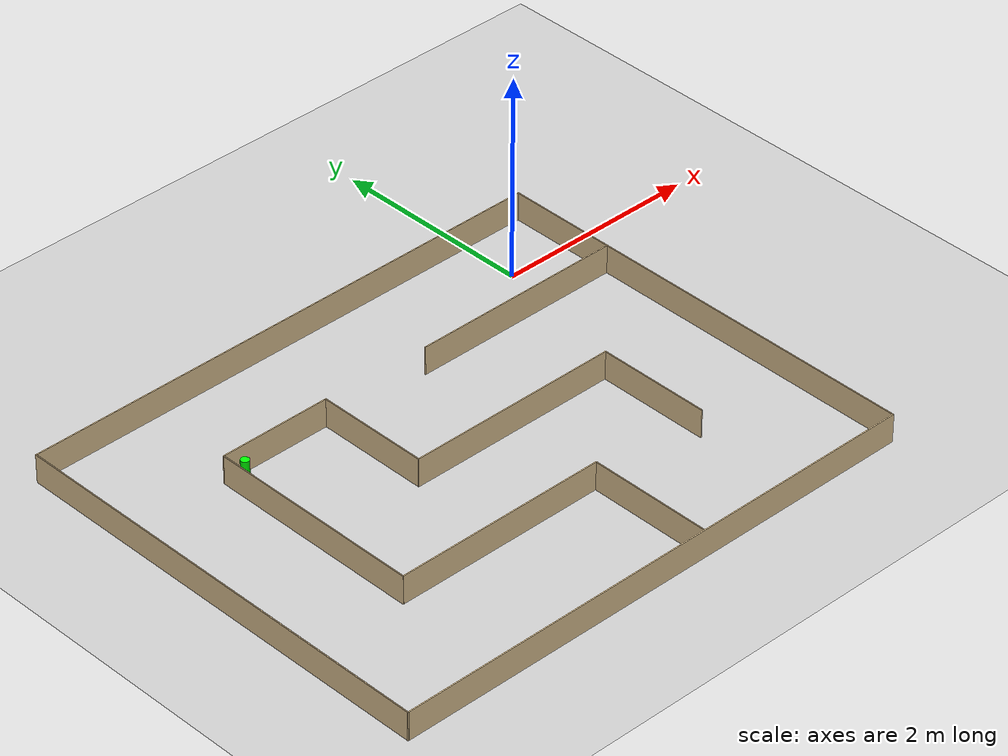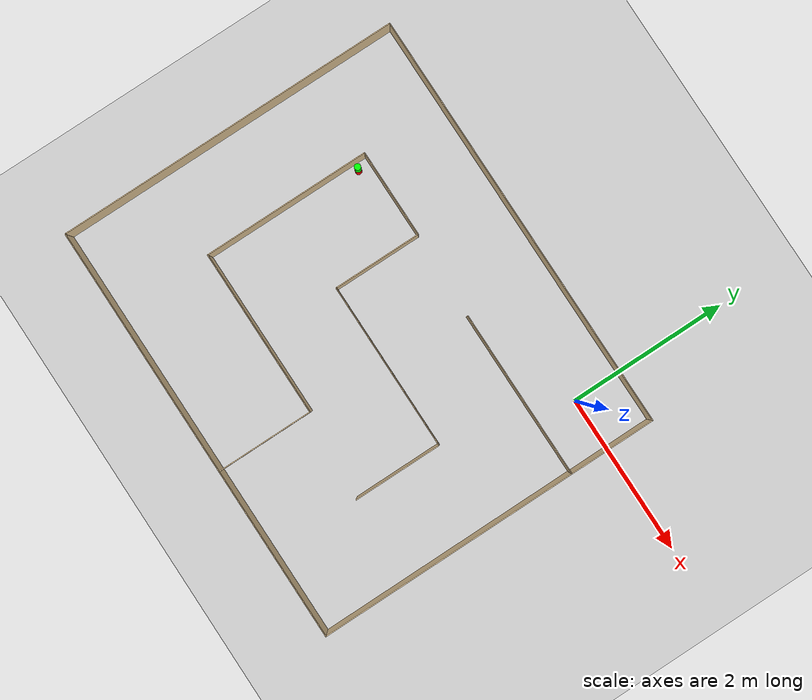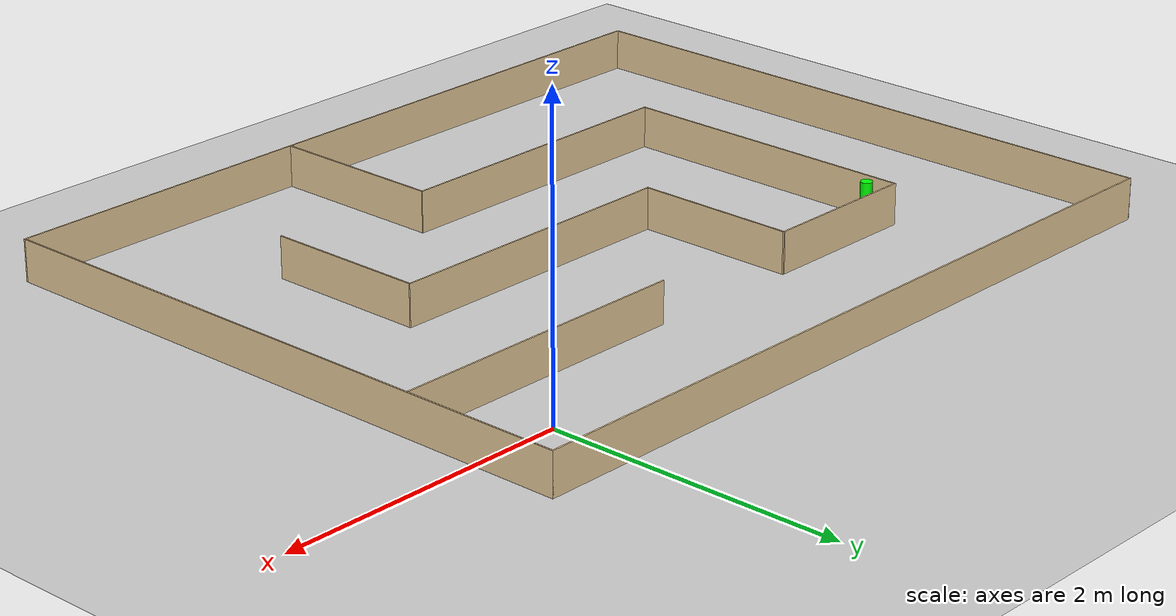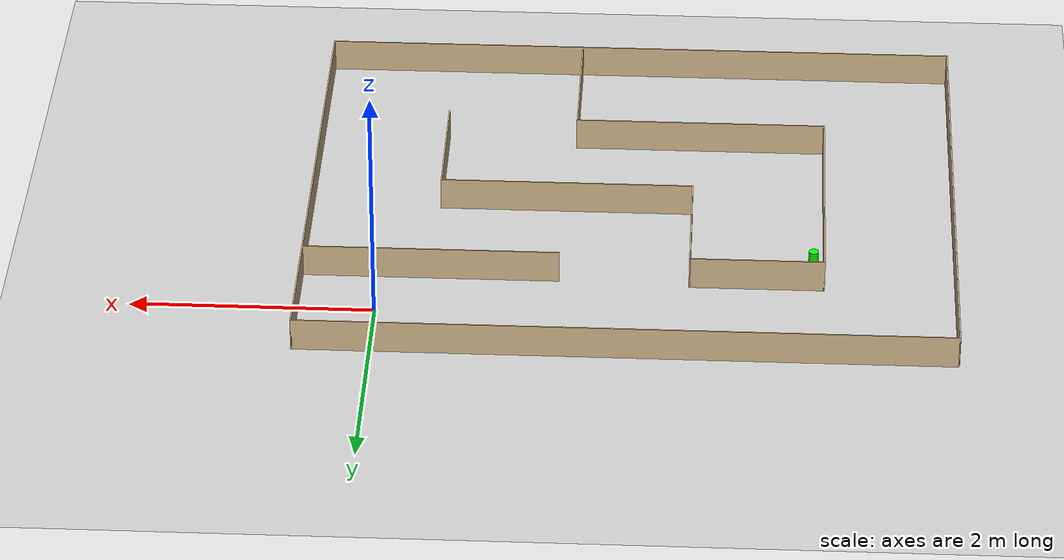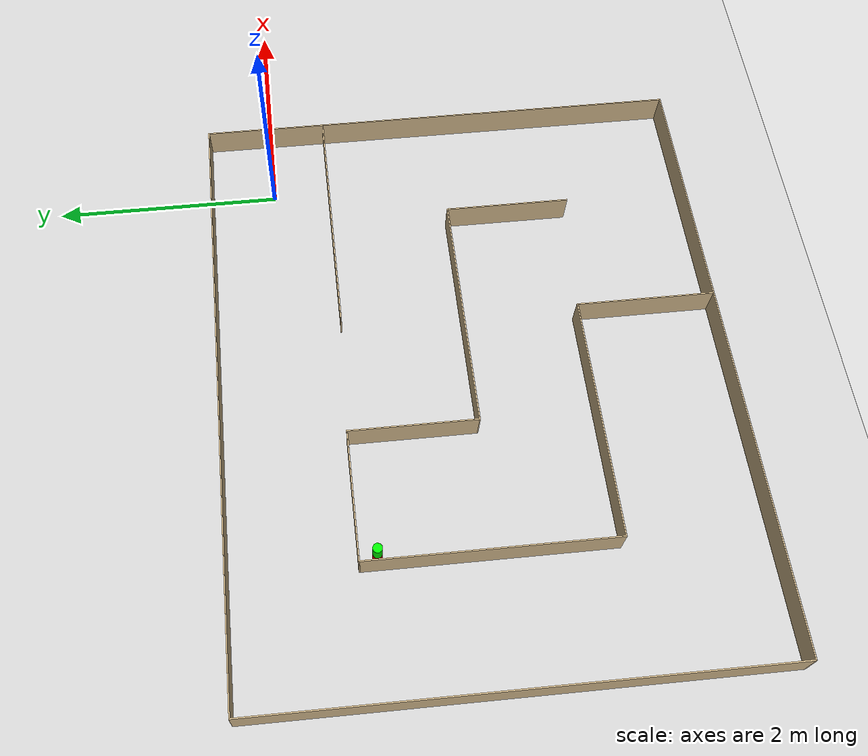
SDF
<sdf version="1.4">
  <world name="default">

    <scene>
      <ambient>0.4 0.4 0.4 1</ambient>
      <background>0.7 0.7 0.7 1</background>
      <shadows>true</shadows>
    </scene>

    <!-- A global light source -->
    <include>
      <uri>model://sun</uri>
    </include>

    <!-- A ground plane -->
    <include>
      <uri>model://ground_plane</uri>
    </include>

    <!-- My Maze -->
    <include>
      <uri>model://maze_0</uri>
	<pose>-2.05 -1.60 0 0 0 0</pose>
    </include>

    <!-- My Beacon -->
    <include>
      <uri>model://beacon_0</uri>
	<pose>-3.56 -0.62 0 0 0 0</pose>
    </include>

    <physics type="ode">
      <real_time_update_rate>1000.0</real_time_update_rate>
      <max_step_size>0.001</max_step_size>
      <real_time_factor>1</real_time_factor>
      <ode>
        <solver>
          <type>quick</type>
          <iters>150</iters>
          <precon_iters>0</precon_iters>
          <sor>1.400000</sor>
          <use_dynamic_moi_rescaling>1</use_dynamic_moi_rescaling>
        </solver>
        <constraints>
          <cfm>0.00001</cfm>
          <erp>0.2</erp>
          <contact_max_correcting_vel>2000.000000</contact_max_correcting_vel>
          <contact_surface_layer>0.01000</contact_surface_layer>
        </constraints>
      </ode>
    </physics>
  </world>

</sdf>

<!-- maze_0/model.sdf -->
<sdf version='1.6'>
  <model name='maze_0'>
    <link name='Wall_0'>
      <pose frame=''>0 2.175 0 0 -0 0</pose>
      <self_collide>0</self_collide>
      <kinematic>0</kinematic>
      <visual name='Wall_0_Visual'>
        <pose frame=''>0 0 0.14 0 -0 0</pose>
        <geometry>
          <box>
            <size>5.36 0.01 0.28</size>
          </box>
        </geometry>
        <material>
          <script>
            <uri>file://media/materials/scripts/gazebo.material</uri>
            <name>Gazebo/Grey</name>
          </script>
          <ambient>0.921569 0.807843 0.615686 1</ambient>
          <diffuse>0.7 0.7 0.7 1</diffuse>
          <specular>0.01 0.01 0.01 1</specular>
          <emissive>0 0 0 1</emissive>
        </material>
        <cast_shadows>1</cast_shadows>
        <transparency>0</transparency>
      </visual>
      <collision name='Wall_0_Collision'>
        <laser_retro>0</laser_retro>
        <max_contacts>10</max_contacts>
        <pose frame=''>0 0 0.14 0 -0 0</pose>
        <geometry>
          <box>
            <size>5.36 0.01 0.28</size>
          </box>
        </geometry>
        <surface>
          <friction>
            <ode>
              <mu>1</mu>
              <mu2>1</mu2>
              <fdir1>0 0 0</fdir1>
              <slip1>0</slip1>
              <slip2>0</slip2>
            </ode>
            <torsional>
              <coefficient>1</coefficient>
              <patch_radius>0</patch_radius>
              <surface_radius>0</surface_radius>
              <use_patch_radius>1</use_patch_radius>
              <ode>
                <slip>0</slip>
              </ode>
            </torsional>
          </friction>
          <bounce>
            <restitution_coefficient>0</restitution_coefficient>
            <threshold>1e+06</threshold>
          </bounce>
          <contact>
            <collide_without_contact>0</collide_without_contact>
            <collide_without_contact_bitmask>1</collide_without_contact_bitmask>
            <collide_bitmask>1</collide_bitmask>
            <ode>
              <soft_cfm>0</soft_cfm>
              <soft_erp>0.2</soft_erp>
              <kp>1e+13</kp>
              <kd>1</kd>
              <max_vel>0.01</max_vel>
              <min_depth>0</min_depth>
            </ode>
            <bullet>
              <split_impulse>1</split_impulse>
              <split_impulse_penetration_threshold>-0.01</split_impulse_penetration_threshold>
              <soft_cfm>0</soft_cfm>
              <soft_erp>0.2</soft_erp>
              <kp>1e+13</kp>
              <kd>1</kd>
            </bullet>
          </contact>
        </surface>
      </collision>
    </link>
    <link name='Wall_1'>
      <pose frame=''>2.675 0 0 0 0 -1.5708</pose>
      <self_collide>0</self_collide>
      <kinematic>0</kinematic>
      <visual name='Wall_1_Visual'>
        <pose frame=''>0 0 0.14 0 -0 0</pose>
        <geometry>
          <box>
            <size>4.36 0.01 0.28</size>
          </box>
        </geometry>
        <material>
          <script>
            <uri>file://media/materials/scripts/gazebo.material</uri>
            <name>Gazebo/Grey</name>
          </script>
          <ambient>0.921569 0.807843 0.615686 1</ambient>
          <diffuse>0.7 0.7 0.7 1</diffuse>
          <specular>0.01 0.01 0.01 1</specular>
          <emissive>0 0 0 1</emissive>
        </material>
        <cast_shadows>1</cast_shadows>
        <transparency>0</transparency>
      </visual>
      <collision name='Wall_1_Collision'>
        <laser_retro>0</laser_retro>
        <max_contacts>10</max_contacts>
        <pose frame=''>0 0 0.14 0 -0 0</pose>
        <geometry>
          <box>
            <size>4.36 0.01 0.28</size>
          </box>
        </geometry>
        <surface>
          <friction>
            <ode>
              <mu>1</mu>
              <mu2>1</mu2>
              <fdir1>0 0 0</fdir1>
              <slip1>0</slip1>
              <slip2>0</slip2>
            </ode>
            <torsional>
              <coefficient>1</coefficient>
              <patch_radius>0</patch_radius>
              <surface_radius>0</surface_radius>
              <use_patch_radius>1</use_patch_radius>
              <ode>
                <slip>0</slip>
              </ode>
            </torsional>
          </friction>
          <bounce>
            <restitution_coefficient>0</restitution_coefficient>
            <threshold>1e+06</threshold>
          </bounce>
          <contact>
            <collide_without_contact>0</collide_without_contact>
            <collide_without_contact_bitmask>1</collide_without_contact_bitmask>
            <collide_bitmask>1</collide_bitmask>
            <ode>
              <soft_cfm>0</soft_cfm>
              <soft_erp>0.2</soft_erp>
              <kp>1e+13</kp>
              <kd>1</kd>
              <max_vel>0.01</max_vel>
              <min_depth>0</min_depth>
            </ode>
            <bullet>
              <split_impulse>1</split_impulse>
              <split_impulse_penetration_threshold>-0.01</split_impulse_penetration_threshold>
              <soft_cfm>0</soft_cfm>
              <soft_erp>0.2</soft_erp>
              <kp>1e+13</kp>
              <kd>1</kd>
            </bullet>
          </contact>
        </surface>
      </collision>
    </link>
    <link name='Wall_10'>
      <pose frame=''>-1.051 1.133 0 0 -0 3.14159</pose>
      <self_collide>0</self_collide>
      <kinematic>0</kinematic>
      <visual name='Wall_10_Visual'>
        <pose frame=''>0 0 0.14 0 -0 0</pose>
        <geometry>
          <box>
            <size>1.11 0.01 0.28</size>
          </box>
        </geometry>
        <material>
          <script>
            <uri>file://media/materials/scripts/gazebo.material</uri>
            <name>Gazebo/Grey</name>
          </script>
          <ambient>0.921569 0.807843 0.615686 1</ambient>
          <diffuse>0.7 0.7 0.7 1</diffuse>
          <specular>0.01 0.01 0.01 1</specular>
          <emissive>0 0 0 1</emissive>
        </material>
        <cast_shadows>1</cast_shadows>
        <transparency>0</transparency>
      </visual>
      <collision name='Wall_10_Collision'>
        <laser_retro>0</laser_retro>
        <max_contacts>10</max_contacts>
        <pose frame=''>0 0 0.14 0 -0 0</pose>
        <geometry>
          <box>
            <size>1.11 0.01 0.28</size>
          </box>
        </geometry>
        <surface>
          <friction>
            <ode>
              <mu>1</mu>
              <mu2>1</mu2>
              <fdir1>0 0 0</fdir1>
              <slip1>0</slip1>
              <slip2>0</slip2>
            </ode>
            <torsional>
              <coefficient>1</coefficient>
              <patch_radius>0</patch_radius>
              <surface_radius>0</surface_radius>
              <use_patch_radius>1</use_patch_radius>
              <ode>
                <slip>0</slip>
              </ode>
            </torsional>
          </friction>
          <bounce>
            <restitution_coefficient>0</restitution_coefficient>
            <threshold>1e+06</threshold>
          </bounce>
          <contact>
            <collide_without_contact>0</collide_without_contact>
            <collide_without_contact_bitmask>1</collide_without_contact_bitmask>
            <collide_bitmask>1</collide_bitmask>
            <ode>
              <soft_cfm>0</soft_cfm>
              <soft_erp>0.2</soft_erp>
              <kp>1e+13</kp>
              <kd>1</kd>
              <max_vel>0.01</max_vel>
              <min_depth>0</min_depth>
            </ode>
            <bullet>
              <split_impulse>1</split_impulse>
              <split_impulse_penetration_threshold>-0.01</split_impulse_penetration_threshold>
              <soft_cfm>0</soft_cfm>
              <soft_erp>0.2</soft_erp>
              <kp>1e+13</kp>
              <kd>1</kd>
            </bullet>
          </contact>
        </surface>
      </collision>
    </link>
    <link name='Wall_11'>
      <pose frame=''>-1.601 0.083 0 0 0 -1.5708</pose>
      <self_collide>0</self_collide>
      <kinematic>0</kinematic>
      <visual name='Wall_11_Visual'>
        <pose frame=''>0 0 0.14 0 -0 0</pose>
        <geometry>
          <box>
            <size>2.11 0.01 0.28</size>
          </box>
        </geometry>
        <material>
          <script>
            <uri>file://media/materials/scripts/gazebo.material</uri>
            <name>Gazebo/Grey</name>
          </script>
          <ambient>0.921569 0.807843 0.615686 1</ambient>
          <diffuse>0.7 0.7 0.7 1</diffuse>
          <specular>0.01 0.01 0.01 1</specular>
          <emissive>0 0 0 1</emissive>
        </material>
        <cast_shadows>1</cast_shadows>
        <transparency>0</transparency>
      </visual>
      <collision name='Wall_11_Collision'>
        <laser_retro>0</laser_retro>
        <max_contacts>10</max_contacts>
        <pose frame=''>0 0 0.14 0 -0 0</pose>
        <geometry>
          <box>
            <size>2.11 0.01 0.28</size>
          </box>
        </geometry>
        <surface>
          <friction>
            <ode>
              <mu>1</mu>
              <mu2>1</mu2>
              <fdir1>0 0 0</fdir1>
              <slip1>0</slip1>
              <slip2>0</slip2>
            </ode>
            <torsional>
              <coefficient>1</coefficient>
              <patch_radius>0</patch_radius>
              <surface_radius>0</surface_radius>
              <use_patch_radius>1</use_patch_radius>
              <ode>
                <slip>0</slip>
              </ode>
            </torsional>
          </friction>
          <bounce>
            <restitution_coefficient>0</restitution_coefficient>
            <threshold>1e+06</threshold>
          </bounce>
          <contact>
            <collide_without_contact>0</collide_without_contact>
            <collide_without_contact_bitmask>1</collide_without_contact_bitmask>
            <collide_bitmask>1</collide_bitmask>
            <ode>
              <soft_cfm>0</soft_cfm>
              <soft_erp>0.2</soft_erp>
              <kp>1e+13</kp>
              <kd>1</kd>
              <max_vel>0.01</max_vel>
              <min_depth>0</min_depth>
            </ode>
            <bullet>
              <split_impulse>1</split_impulse>
              <split_impulse_penetration_threshold>-0.01</split_impulse_penetration_threshold>
              <soft_cfm>0</soft_cfm>
              <soft_erp>0.2</soft_erp>
              <kp>1e+13</kp>
              <kd>1</kd>
            </bullet>
          </contact>
        </surface>
      </collision>
    </link>
    <link name='Wall_12'>
      <pose frame=''>-0.551 -0.9675 0 0 0 -0.000476</pose>
      <self_collide>0</self_collide>
      <kinematic>0</kinematic>
      <visual name='Wall_12_Visual'>
        <pose frame=''>0 0 0.14 0 -0 0</pose>
        <geometry>
          <box>
            <size>2.11 0.01 0.28</size>
          </box>
        </geometry>
        <material>
          <script>
            <uri>file://media/materials/scripts/gazebo.material</uri>
            <name>Gazebo/Grey</name>
          </script>
          <ambient>0.921569 0.807843 0.615686 1</ambient>
          <diffuse>0.7 0.7 0.7 1</diffuse>
          <specular>0.01 0.01 0.01 1</specular>
          <emissive>0 0 0 1</emissive>
        </material>
        <cast_shadows>1</cast_shadows>
        <transparency>0</transparency>
      </visual>
      <collision name='Wall_12_Collision'>
        <laser_retro>0</laser_retro>
        <max_contacts>10</max_contacts>
        <pose frame=''>0 0 0.14 0 -0 0</pose>
        <geometry>
          <box>
            <size>2.11 0.01 0.28</size>
          </box>
        </geometry>
        <surface>
          <friction>
            <ode>
              <mu>1</mu>
              <mu2>1</mu2>
              <fdir1>0 0 0</fdir1>
              <slip1>0</slip1>
              <slip2>0</slip2>
            </ode>
            <torsional>
              <coefficient>1</coefficient>
              <patch_radius>0</patch_radius>
              <surface_radius>0</surface_radius>
              <use_patch_radius>1</use_patch_radius>
              <ode>
                <slip>0</slip>
              </ode>
            </torsional>
          </friction>
          <bounce>
            <restitution_coefficient>0</restitution_coefficient>
            <threshold>1e+06</threshold>
          </bounce>
          <contact>
            <collide_without_contact>0</collide_without_contact>
            <collide_without_contact_bitmask>1</collide_without_contact_bitmask>
            <collide_bitmask>1</collide_bitmask>
            <ode>
              <soft_cfm>0</soft_cfm>
              <soft_erp>0.2</soft_erp>
              <kp>1e+13</kp>
              <kd>1</kd>
              <max_vel>0.01</max_vel>
              <min_depth>0</min_depth>
            </ode>
            <bullet>
              <split_impulse>1</split_impulse>
              <split_impulse_penetration_threshold>-0.01</split_impulse_penetration_threshold>
              <soft_cfm>0</soft_cfm>
              <soft_erp>0.2</soft_erp>
              <kp>1e+13</kp>
              <kd>1</kd>
            </bullet>
          </contact>
        </surface>
      </collision>
    </link>
    <link name='Wall_13'>
      <pose frame=''>0.499 -1.57309 0 0 0 -1.5708</pose>
      <self_collide>0</self_collide>
      <kinematic>0</kinematic>
      <inertial>
        <inertia>
          <ixx>nan</ixx>
          <ixy>0</ixy>
          <ixz>0</ixz>
          <iyy>nan</iyy>
          <iyz>0</iyz>
          <izz>nan</izz>
        </inertia>
        <mass>0</mass>
        <pose frame=''>0 0 0 0 -0 0</pose>
      </inertial>
      <visual name='Wall_13_Visual'>
        <pose frame=''>0 0 0.14 0 -0 0</pose>
        <geometry>
          <box>
            <size>1.20741 0.01 0.28</size>
          </box>
        </geometry>
        <material>
          <script>
            <uri>file://media/materials/scripts/gazebo.material</uri>
            <name>Gazebo/Grey</name>
          </script>
          <ambient>0.921569 0.807843 0.615686 1</ambient>
          <diffuse>0.7 0.7 0.7 1</diffuse>
          <specular>0.01 0.01 0.01 1</specular>
          <emissive>0 0 0 1</emissive>
        </material>
        <cast_shadows>1</cast_shadows>
        <transparency>0</transparency>
      </visual>
      <collision name='Wall_13_Collision'>
        <laser_retro>0</laser_retro>
        <max_contacts>10</max_contacts>
        <pose frame=''>0 0 0.14 0 -0 0</pose>
        <geometry>
          <box>
            <size>1.20741 0.01 0.28</size>
          </box>
        </geometry>
        <surface>
          <friction>
            <ode>
              <mu>1</mu>
              <mu2>1</mu2>
              <fdir1>0 0 0</fdir1>
              <slip1>0</slip1>
              <slip2>0</slip2>
            </ode>
            <torsional>
              <coefficient>1</coefficient>
              <patch_radius>0</patch_radius>
              <surface_radius>0</surface_radius>
              <use_patch_radius>1</use_patch_radius>
              <ode>
                <slip>0</slip>
              </ode>
            </torsional>
          </friction>
          <bounce>
            <restitution_coefficient>0</restitution_coefficient>
            <threshold>1e+06</threshold>
          </bounce>
          <contact>
            <collide_without_contact>0</collide_without_contact>
            <collide_without_contact_bitmask>1</collide_without_contact_bitmask>
            <collide_bitmask>1</collide_bitmask>
            <ode>
              <soft_cfm>0</soft_cfm>
              <soft_erp>0.2</soft_erp>
              <kp>1e+13</kp>
              <kd>1</kd>
              <max_vel>0.01</max_vel>
              <min_depth>0</min_depth>
            </ode>
            <bullet>
              <split_impulse>1</split_impulse>
              <split_impulse_penetration_threshold>-0.01</split_impulse_penetration_threshold>
              <soft_cfm>0</soft_cfm>
              <soft_erp>0.2</soft_erp>
              <kp>1e+13</kp>
              <kd>1</kd>
            </bullet>
          </contact>
        </surface>
      </collision>
    </link>
    <link name='Wall_2'>
      <pose frame=''>0 -2.175 0 0 -0 3.14159</pose>
      <self_collide>0</self_collide>
      <kinematic>0</kinematic>
      <visual name='Wall_2_Visual'>
        <pose frame=''>0 0 0.14 0 -0 0</pose>
        <geometry>
          <box>
            <size>5.36 0.01 0.28</size>
          </box>
        </geometry>
        <material>
          <script>
            <uri>file://media/materials/scripts/gazebo.material</uri>
            <name>Gazebo/Grey</name>
          </script>
          <ambient>0.921569 0.807843 0.615686 1</ambient>
          <diffuse>0.7 0.7 0.7 1</diffuse>
          <specular>0.01 0.01 0.01 1</specular>
          <emissive>0 0 0 1</emissive>
        </material>
        <cast_shadows>1</cast_shadows>
        <transparency>0</transparency>
      </visual>
      <collision name='Wall_2_Collision'>
        <laser_retro>0</laser_retro>
        <max_contacts>10</max_contacts>
        <pose frame=''>0 0 0.14 0 -0 0</pose>
        <geometry>
          <box>
            <size>5.36 0.01 0.28</size>
          </box>
        </geometry>
        <surface>
          <friction>
            <ode>
              <mu>1</mu>
              <mu2>1</mu2>
              <fdir1>0 0 0</fdir1>
              <slip1>0</slip1>
              <slip2>0</slip2>
            </ode>
            <torsional>
              <coefficient>1</coefficient>
              <patch_radius>0</patch_radius>
              <surface_radius>0</surface_radius>
              <use_patch_radius>1</use_patch_radius>
              <ode>
                <slip>0</slip>
              </ode>
            </torsional>
          </friction>
          <bounce>
            <restitution_coefficient>0</restitution_coefficient>
            <threshold>1e+06</threshold>
          </bounce>
          <contact>
            <collide_without_contact>0</collide_without_contact>
            <collide_without_contact_bitmask>1</collide_without_contact_bitmask>
            <collide_bitmask>1</collide_bitmask>
            <ode>
              <soft_cfm>0</soft_cfm>
              <soft_erp>0.2</soft_erp>
              <kp>1e+13</kp>
              <kd>1</kd>
              <max_vel>0.01</max_vel>
              <min_depth>0</min_depth>
            </ode>
            <bullet>
              <split_impulse>1</split_impulse>
              <split_impulse_penetration_threshold>-0.01</split_impulse_penetration_threshold>
              <soft_cfm>0</soft_cfm>
              <soft_erp>0.2</soft_erp>
              <kp>1e+13</kp>
              <kd>1</kd>
            </bullet>
          </contact>
        </surface>
      </collision>
    </link>
    <link name='Wall_3'>
      <pose frame=''>-2.675 0 0 0 -0 1.5708</pose>
      <self_collide>0</self_collide>
      <kinematic>0</kinematic>
      <visual name='Wall_3_Visual'>
        <pose frame=''>0 0 0.14 0 -0 0</pose>
        <geometry>
          <box>
            <size>4.36 0.01 0.28</size>
          </box>
        </geometry>
        <material>
          <script>
            <uri>file://media/materials/scripts/gazebo.material</uri>
            <name>Gazebo/Grey</name>
          </script>
          <ambient>0.921569 0.807843 0.615686 1</ambient>
          <diffuse>0.7 0.7 0.7 1</diffuse>
          <specular>0.01 0.01 0.01 1</specular>
          <emissive>0 0 0 1</emissive>
        </material>
        <cast_shadows>1</cast_shadows>
        <transparency>0</transparency>
      </visual>
      <collision name='Wall_3_Collision'>
        <laser_retro>0</laser_retro>
        <max_contacts>10</max_contacts>
        <pose frame=''>0 0 0.14 0 -0 0</pose>
        <geometry>
          <box>
            <size>4.36 0.01 0.28</size>
          </box>
        </geometry>
        <surface>
          <friction>
            <ode>
              <mu>1</mu>
              <mu2>1</mu2>
              <fdir1>0 0 0</fdir1>
              <slip1>0</slip1>
              <slip2>0</slip2>
            </ode>
            <torsional>
              <coefficient>1</coefficient>
              <patch_radius>0</patch_radius>
              <surface_radius>0</surface_radius>
              <use_patch_radius>1</use_patch_radius>
              <ode>
                <slip>0</slip>
              </ode>
            </torsional>
          </friction>
          <bounce>
            <restitution_coefficient>0</restitution_coefficient>
            <threshold>1e+06</threshold>
          </bounce>
          <contact>
            <collide_without_contact>0</collide_without_contact>
            <collide_without_contact_bitmask>1</collide_without_contact_bitmask>
            <collide_bitmask>1</collide_bitmask>
            <ode>
              <soft_cfm>0</soft_cfm>
              <soft_erp>0.2</soft_erp>
              <kp>1e+13</kp>
              <kd>1</kd>
              <max_vel>0.01</max_vel>
              <min_depth>0</min_depth>
            </ode>
            <bullet>
              <split_impulse>1</split_impulse>
              <split_impulse_penetration_threshold>-0.01</split_impulse_penetration_threshold>
              <soft_cfm>0</soft_cfm>
              <soft_erp>0.2</soft_erp>
              <kp>1e+13</kp>
              <kd>1</kd>
            </bullet>
          </contact>
        </surface>
      </collision>
    </link>
    <link name='Wall_5'>
      <pose frame=''>1.62023 1.094 0 0 -0 0</pose>
      <self_collide>0</self_collide>
      <kinematic>0</kinematic>
      <visual name='Wall_5_Visual'>
        <pose frame=''>0 0 0.14 0 -0 0</pose>
        <geometry>
          <box>
            <size>2.11 0.01 0.28</size>
          </box>
        </geometry>
        <material>
          <script>
            <uri>file://media/materials/scripts/gazebo.material</uri>
            <name>Gazebo/Grey</name>
          </script>
          <ambient>0.921569 0.807843 0.615686 1</ambient>
          <diffuse>0.7 0.7 0.7 1</diffuse>
          <specular>0.01 0.01 0.01 1</specular>
          <emissive>0 0 0 1</emissive>
        </material>
        <cast_shadows>1</cast_shadows>
        <transparency>0</transparency>
      </visual>
      <collision name='Wall_5_Collision'>
        <laser_retro>0</laser_retro>
        <max_contacts>10</max_contacts>
        <pose frame=''>0 0 0.14 0 -0 0</pose>
        <geometry>
          <box>
            <size>2.11 0.01 0.28</size>
          </box>
        </geometry>
        <surface>
          <friction>
            <ode>
              <mu>1</mu>
              <mu2>1</mu2>
              <fdir1>0 0 0</fdir1>
              <slip1>0</slip1>
              <slip2>0</slip2>
            </ode>
            <torsional>
              <coefficient>1</coefficient>
              <patch_radius>0</patch_radius>
              <surface_radius>0</surface_radius>
              <use_patch_radius>1</use_patch_radius>
              <ode>
                <slip>0</slip>
              </ode>
            </torsional>
          </friction>
          <bounce>
            <restitution_coefficient>0</restitution_coefficient>
            <threshold>1e+06</threshold>
          </bounce>
          <contact>
            <collide_without_contact>0</collide_without_contact>
            <collide_without_contact_bitmask>1</collide_without_contact_bitmask>
            <collide_bitmask>1</collide_bitmask>
            <ode>
              <soft_cfm>0</soft_cfm>
              <soft_erp>0.2</soft_erp>
              <kp>1e+13</kp>
              <kd>1</kd>
              <max_vel>0.01</max_vel>
              <min_depth>0</min_depth>
            </ode>
            <bullet>
              <split_impulse>1</split_impulse>
              <split_impulse_penetration_threshold>-0.01</split_impulse_penetration_threshold>
              <soft_cfm>0</soft_cfm>
              <soft_erp>0.2</soft_erp>
              <kp>1e+13</kp>
              <kd>1</kd>
            </bullet>
          </contact>
        </surface>
      </collision>
    </link>
    <link name='Wall_7'>
      <pose frame=''>1.599 -0.518 0 0 -0 1.5708</pose>
      <self_collide>0</self_collide>
      <kinematic>0</kinematic>
      <visual name='Wall_7_Visual'>
        <pose frame=''>0 0 0.14 0 -0 0</pose>
        <geometry>
          <box>
            <size>1.11 0.01 0.28</size>
          </box>
        </geometry>
        <material>
          <script>
            <uri>file://media/materials/scripts/gazebo.material</uri>
            <name>Gazebo/Grey</name>
          </script>
          <ambient>0.921569 0.807843 0.615686 1</ambient>
          <diffuse>0.7 0.7 0.7 1</diffuse>
          <specular>0.01 0.01 0.01 1</specular>
          <emissive>0 0 0 1</emissive>
        </material>
        <cast_shadows>1</cast_shadows>
        <transparency>0</transparency>
      </visual>
      <collision name='Wall_7_Collision'>
        <laser_retro>0</laser_retro>
        <max_contacts>10</max_contacts>
        <pose frame=''>0 0 0.14 0 -0 0</pose>
        <geometry>
          <box>
            <size>1.11 0.01 0.28</size>
          </box>
        </geometry>
        <surface>
          <friction>
            <ode>
              <mu>1</mu>
              <mu2>1</mu2>
              <fdir1>0 0 0</fdir1>
              <slip1>0</slip1>
              <slip2>0</slip2>
            </ode>
            <torsional>
              <coefficient>1</coefficient>
              <patch_radius>0</patch_radius>
              <surface_radius>0</surface_radius>
              <use_patch_radius>1</use_patch_radius>
              <ode>
                <slip>0</slip>
              </ode>
            </torsional>
          </friction>
          <bounce>
            <restitution_coefficient>0</restitution_coefficient>
            <threshold>1e+06</threshold>
          </bounce>
          <contact>
            <collide_without_contact>0</collide_without_contact>
            <collide_without_contact_bitmask>1</collide_without_contact_bitmask>
            <collide_bitmask>1</collide_bitmask>
            <ode>
              <soft_cfm>0</soft_cfm>
              <soft_erp>0.2</soft_erp>
              <kp>1e+13</kp>
              <kd>1</kd>
              <max_vel>0.01</max_vel>
              <min_depth>0</min_depth>
            </ode>
            <bullet>
              <split_impulse>1</split_impulse>
              <split_impulse_penetration_threshold>-0.01</split_impulse_penetration_threshold>
              <soft_cfm>0</soft_cfm>
              <soft_erp>0.2</soft_erp>
              <kp>1e+13</kp>
              <kd>1</kd>
            </bullet>
          </contact>
        </surface>
      </collision>
    </link>
    <link name='Wall_8'>
      <pose frame=''>0.549 0.0325 0 0 -0 3.14112</pose>
      <self_collide>0</self_collide>
      <kinematic>0</kinematic>
      <visual name='Wall_8_Visual'>
        <pose frame=''>0 0 0.14 0 -0 0</pose>
        <geometry>
          <box>
            <size>2.11 0.01 0.28</size>
          </box>
        </geometry>
        <material>
          <script>
            <uri>file://media/materials/scripts/gazebo.material</uri>
            <name>Gazebo/Grey</name>
          </script>
          <ambient>0.921569 0.807843 0.615686 1</ambient>
          <diffuse>0.7 0.7 0.7 1</diffuse>
          <specular>0.01 0.01 0.01 1</specular>
          <emissive>0 0 0 1</emissive>
        </material>
        <cast_shadows>1</cast_shadows>
        <transparency>0</transparency>
      </visual>
      <collision name='Wall_8_Collision'>
        <laser_retro>0</laser_retro>
        <max_contacts>10</max_contacts>
        <pose frame=''>0 0 0.14 0 -0 0</pose>
        <geometry>
          <box>
            <size>2.11 0.01 0.28</size>
          </box>
        </geometry>
        <surface>
          <friction>
            <ode>
              <mu>1</mu>
              <mu2>1</mu2>
              <fdir1>0 0 0</fdir1>
              <slip1>0</slip1>
              <slip2>0</slip2>
            </ode>
            <torsional>
              <coefficient>1</coefficient>
              <patch_radius>0</patch_radius>
              <surface_radius>0</surface_radius>
              <use_patch_radius>1</use_patch_radius>
              <ode>
                <slip>0</slip>
              </ode>
            </torsional>
          </friction>
          <bounce>
            <restitution_coefficient>0</restitution_coefficient>
            <threshold>1e+06</threshold>
          </bounce>
          <contact>
            <collide_without_contact>0</collide_without_contact>
            <collide_without_contact_bitmask>1</collide_without_contact_bitmask>
            <collide_bitmask>1</collide_bitmask>
            <ode>
              <soft_cfm>0</soft_cfm>
              <soft_erp>0.2</soft_erp>
              <kp>1e+13</kp>
              <kd>1</kd>
              <max_vel>0.01</max_vel>
              <min_depth>0</min_depth>
            </ode>
            <bullet>
              <split_impulse>1</split_impulse>
              <split_impulse_penetration_threshold>-0.01</split_impulse_penetration_threshold>
              <soft_cfm>0</soft_cfm>
              <soft_erp>0.2</soft_erp>
              <kp>1e+13</kp>
              <kd>1</kd>
            </bullet>
          </contact>
        </surface>
      </collision>
    </link>
    <link name='Wall_9'>
      <pose frame=''>-0.501 0.583 0 0 -0 1.5708</pose>
      <self_collide>0</self_collide>
      <kinematic>0</kinematic>
      <visual name='Wall_9_Visual'>
        <pose frame=''>0 0 0.14 0 -0 0</pose>
        <geometry>
          <box>
            <size>1.11 0.01 0.28</size>
          </box>
        </geometry>
        <material>
          <script>
            <uri>file://media/materials/scripts/gazebo.material</uri>
            <name>Gazebo/Grey</name>
          </script>
          <ambient>0.921569 0.807843 0.615686 1</ambient>
          <diffuse>0.7 0.7 0.7 1</diffuse>
          <specular>0.01 0.01 0.01 1</specular>
          <emissive>0 0 0 1</emissive>
        </material>
        <cast_shadows>1</cast_shadows>
        <transparency>0</transparency>
      </visual>
      <collision name='Wall_9_Collision'>
        <laser_retro>0</laser_retro>
        <max_contacts>10</max_contacts>
        <pose frame=''>0 0 0.14 0 -0 0</pose>
        <geometry>
          <box>
            <size>1.11 0.01 0.28</size>
          </box>
        </geometry>
        <surface>
          <friction>
            <ode>
              <mu>1</mu>
              <mu2>1</mu2>
              <fdir1>0 0 0</fdir1>
              <slip1>0</slip1>
              <slip2>0</slip2>
            </ode>
            <torsional>
              <coefficient>1</coefficient>
              <patch_radius>0</patch_radius>
              <surface_radius>0</surface_radius>
              <use_patch_radius>1</use_patch_radius>
              <ode>
                <slip>0</slip>
              </ode>
            </torsional>
          </friction>
          <bounce>
            <restitution_coefficient>0</restitution_coefficient>
            <threshold>1e+06</threshold>
          </bounce>
          <contact>
            <collide_without_contact>0</collide_without_contact>
            <collide_without_contact_bitmask>1</collide_without_contact_bitmask>
            <collide_bitmask>1</collide_bitmask>
            <ode>
              <soft_cfm>0</soft_cfm>
              <soft_erp>0.2</soft_erp>
              <kp>1e+13</kp>
              <kd>1</kd>
              <max_vel>0.01</max_vel>
              <min_depth>0</min_depth>
            </ode>
            <bullet>
              <split_impulse>1</split_impulse>
              <split_impulse_penetration_threshold>-0.01</split_impulse_penetration_threshold>
              <soft_cfm>0</soft_cfm>
              <soft_erp>0.2</soft_erp>
              <kp>1e+13</kp>
              <kd>1</kd>
            </bullet>
          </contact>
        </surface>
      </collision>
    </link>
    <static>1</static>
    <allow_auto_disable>1</allow_auto_disable>
  </model>
</sdf>

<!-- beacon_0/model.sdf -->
<sdf version='1.4'>
  <model name="beacon_0">
	<static>true</static>
          <link name='chassis_lower'>
            <pose>0 0 0.07 0 0 0</pose>

            <collision name='collision'>
              <geometry>
                <cylinder>
                  <radius>.04</radius>
		  <length>.140</length>
                </cylinder>
              </geometry>
            </collision>

            <visual name='visual'>
              <geometry>
                <cylinder>
                  <radius>.04</radius>
		  <length>.140</length>
                </cylinder>
              </geometry>
        	<material>
          	  <ambient>1 0 0 1</ambient>
          	  <diffuse>1 0 0 1</diffuse>
          	  <specular>0.1 0.1 0.1 1</specular>
         	  <emissive>0 0 0 0</emissive>
        	</material>
            </visual>
          </link>

          <link name='chassis_upper'>
            <pose>0 0 0.21 0 0 0</pose>

            <collision name='collision'>
              <geometry>
                <cylinder>
                  <radius>.04</radius>
		  <length>.140</length>
                </cylinder>
              </geometry>
            </collision>

            <visual name='visual'>
              <geometry>
                <cylinder>
                  <radius>.04</radius>
		  <length>.140</length>
                </cylinder>
              </geometry>
        	<material>
          	  <ambient>0 1 0 1</ambient>
          	  <diffuse>0 1 0 1</diffuse>
          	  <specular>0.1 0.1 0.1 1</specular>
         	  <emissive>0 0 0 0</emissive>
        	</material>
            </visual>
          </link>

  </model>
</sdf>
